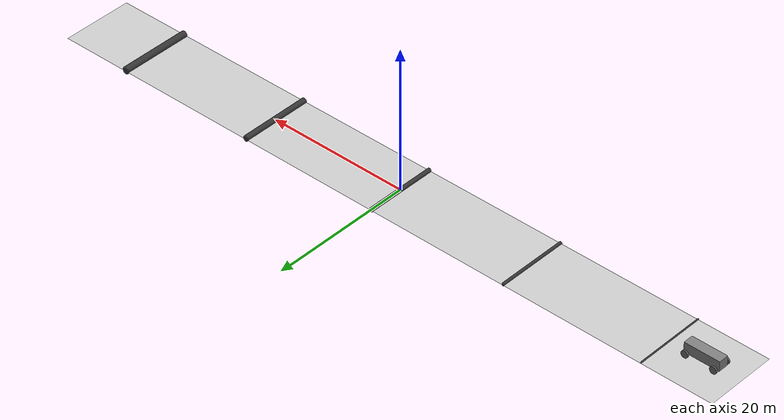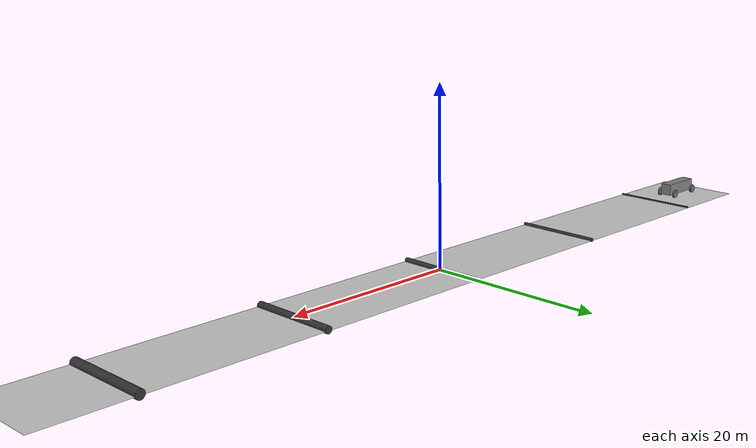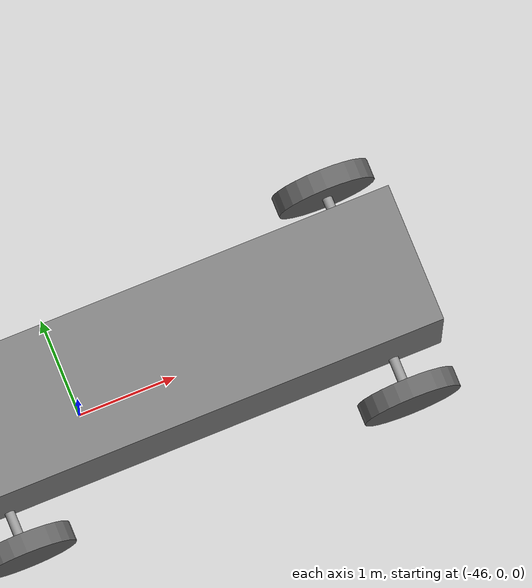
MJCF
<mujoco>
    <worldbody>
        <light diffuse=".5 .5 .5" pos="0 0 200" dir="0 0 -1" />
        <geom type="plane" size="50 5 0.1" rgba="0.8 0.8 0.8 1" />
        <body name="bar1" pos="-40 0 0">
            <geom type="cylinder" size="0.1 5" euler="90 0 0" rgba="0.2 0.2 0.2 1" />
        </body>
        <body name="bar2" pos="-20 0 0">
            <geom type="cylinder" size="0.2 5" euler="90 0 0" rgba="0.2 0.2 0.2 1" />
        </body>
        <body name="bar3" pos="0 0 0">
            <geom type="cylinder" size="0.3 5" euler="90 0 0" rgba="0.2 0.2 0.2 1" />
        </body>
        <body name="bar4" pos="20 0 0">
            <geom type="cylinder" size="0.4 5" euler="90 0 0" rgba="0.2 0.2 0.2 1" />
        </body>
        <body name="bar5" pos="40 0 0">
            <geom type="cylinder" size="0.5 5" euler="90 0 0" rgba="0.2 0.2 0.2 1" />
        </body>
        <body name="car" pos="-45 0 1">
            <joint type="free" axis="0 0 0" pos="0 0 0"/>
            <geom name="car_geom" type="box" size="2.5 0.7 0.7" />

            <body name="axle1" pos="-2 0 -0.5">
                <joint type="hinge" axis="0 1 0" pos="0 0 0"/>
                <geom type="cylinder" size="0.05 1" euler="90 0 0" rgba="0.6 0.6 0.6 1"/>

                <body name="wheel1" pos="0 -1.1 0">
                    <joint type="hinge" axis="0 1 0" pos="0 0 0"/>
                    <geom type="cylinder" size="0.5 0.1" euler="90 0 0" rgba="0.4 0.4 0.4 1" />
                </body>

                <body name="wheel2" pos="0 1.1 0">
                    <joint type="hinge" axis="0 1 0" pos="0 0 0"/>
                    <geom type="cylinder" size="0.5 0.1" euler="90 0 0" rgba="0.4 0.4 0.4 1" />
                </body>
            </body>

            <body name="axle2" pos="2 0 -0.5">
                <joint type="hinge" axis="0 1 0" pos="0 0 0"/>
                <geom type="cylinder" size="0.05 1" euler="90 0 0" rgba="0.6 0.6 0.6 1"/>

                <body name="wheel3" pos="0 -1.1 0">
                    <joint type="hinge" axis="0 1 0" pos="0 0 0"/>
                    <geom type="cylinder" size="0.5 0.1" euler="90 0 0" rgba="0.4 0.4 0.4 1" />
                </body>

                <body name="wheel4" pos="0 1.1 0">
                    <joint type="hinge" axis="0 1 0" pos="0 0 0"/>
                    <geom type="cylinder" size="0.5 0.1" euler="90 0 0" rgba="0.4 0.4 0.4 1" />
                </body>
            </body>
        </body>
    </worldbody>
</mujoco>
